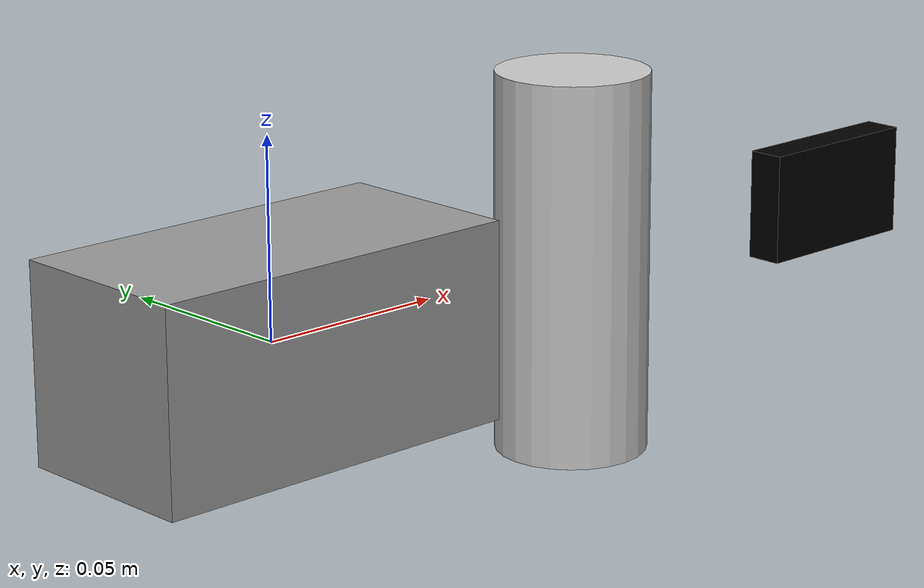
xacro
<?xml version="1.0"?>
<robot xmlns:xacro="http://ros.org/wiki/xacro" name="gripper">

  <!-- Parameters -->
  <xacro:property name="shoulder_length" value="0.1"/>
  <xacro:property name="wrist_length" value="0.1"/>
  <xacro:property name="grip_max_extension" value="0.05"/>
  <xacro:property name="pi" value="3.14159"/>

  <!-- Shoulder link -->
  <link name="gripper_shoulder_link">
    <visual>
      <geometry>
        <box size="${shoulder_length} 0.05 0.05"/>
      </geometry>
      <origin xyz="0 0 0" rpy="0 0 0"/>
      <material name="grey">
        <color rgba="0.6 0.6 0.6 1"/>
      </material>
    </visual>
  </link>

  <!-- Wrist link -->
  <link name="gripper_wrist_link">
    <visual>
      <geometry>
        <cylinder radius="0.02" length="${wrist_length}"/>
      </geometry>
      <origin xyz="0 0 0" rpy="0 0 0"/>
      <material name="silver">
        <color rgba="0.8 0.8 0.8 1"/>
      </material>
    </visual>
  </link>

  <!-- Grip link -->
  <link name="gripper_grip_link">
    <visual>
      <geometry>
        <box size="0.05 0.01 0.03"/>
      </geometry>
      <origin xyz="0 0 0" rpy="0 0 0"/>
      <material name="black">
        <color rgba="0 0 0 1"/>
      </material>
    </visual>
  </link>

  <!-- Shoulder joint -->
  <joint name="shoulder_joint" type="revolute">
    <parent link="gripper_base_link"/>
    <child link="gripper_shoulder_link"/>
    <origin xyz="0 0 0" rpy="0 0 0"/>
    <axis xyz="0 1 0"/>
    <limit lower="-1.57" upper="1.57" effort="10" velocity="1.0"/>
  </joint>

  <!-- Wrist joint -->
  <joint name="wrist_joint" type="revolute">
    <parent link="gripper_shoulder_link"/>
    <child link="gripper_wrist_link"/>
    <origin xyz="${shoulder_length} 0 0" rpy="0 0 0"/>
    <axis xyz="1 0 0"/>
    <limit lower="-1.57" upper="1.57" effort="10" velocity="1.0"/>
  </joint>

  <!-- Grip joint -->
  <joint name="grip_joint" type="prismatic">
    <parent link="gripper_wrist_link"/>
    <child link="gripper_grip_link"/>
    <origin xyz="${wrist_length} 0 0" rpy="0 0 0"/>
    <axis xyz="0 1 0"/>
    <limit lower="0.0" upper="${grip_max_extension}" effort="10" velocity="0.1"/>
  </joint>

  <!-- Optional: base link for integration -->
  <link name="gripper_base_link"/>
</robot>
